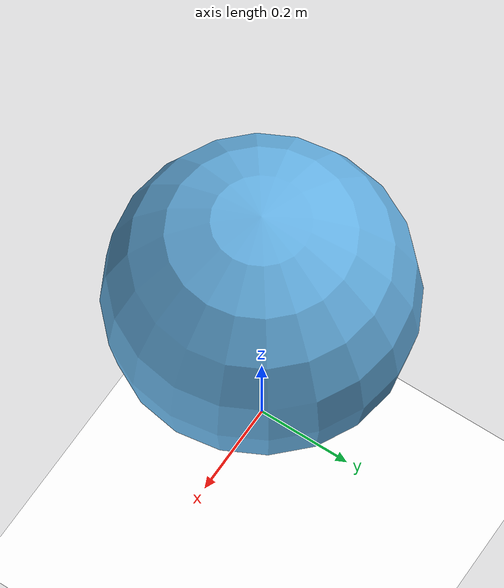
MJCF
<mujoco model="scene9_topology">
  <compiler angle="radian"/>

  <option timestep="0.002" gravity="0 0 -9.81">
    <flag contact="disable"/>
  </option>

  <visual>
    <global offwidth="800" offheight="800"/>
    <quality shadowsize="4096"/>
  </visual>

  <asset>
    <texture name="white_skybox"
             type="skybox"
             builtin="flat"
             width="512"
             height="512"
             rgb1="1 1 1"
             rgb2="1 1 1"/>
    <material name="white_floor" rgba="1 1 1 1" reflectance="0"/>
  </asset>

  <worldbody>
    <light directional="true" pos="0 0 3" dir="0 0 -1" diffuse="0.8 0.8 0.8"/>
    <light directional="true" pos="2 2 3" dir="-0.5 -0.5 -1" diffuse="0.4 0.4 0.4"/>

    <geom name="floor" type="plane" size="5 5 0.1" material="white_floor" pos="0 0 -0.5"/>

    <!-- Target point -->
    <body name="target" pos="0 0 0.5">
      <site name="target_site" size="0.01" rgba="1 0 0 0"/>
    </body>

    <!-- Two droplets -->
    <body name="droplet_1" pos="0 0 0.5">
      <freejoint/>
      <geom name="droplet1_geom" type="sphere" size="0.3" rgba="0.4 0.7 0.9 1" mass="1"/>
    </body>

    <body name="droplet_2" pos="0 0 0.5">
      <freejoint/>
      <geom name="droplet2_geom" type="sphere" size="0.3" rgba="0.4 0.7 0.9 1" mass="1"/>
    </body>

    <!-- Scaled 1.3x for 800x800 square resolution — droplets stay within 0.8m of center -->
    <!-- Ring 1: Cardinal, medium height -->
    <camera name="cam0" pos="2.86 0 1.69" mode="targetbody" target="target" fovy="50"/>
    <camera name="cam1" pos="0 2.86 1.69" mode="targetbody" target="target" fovy="50"/>
    <camera name="cam2" pos="-2.86 0 1.69" mode="targetbody" target="target" fovy="50"/>
    <camera name="cam3" pos="0 -2.86 1.69" mode="targetbody" target="target" fovy="50"/>

    <!-- Ring 2: Diagonal, higher -->
    <camera name="cam4" pos="2.34 2.34 2.86" mode="targetbody" target="target" fovy="50"/>
    <camera name="cam5" pos="-2.34 2.34 2.86" mode="targetbody" target="target" fovy="50"/>
    <camera name="cam6" pos="2.34 -2.34 2.86" mode="targetbody" target="target" fovy="50"/>
    <camera name="cam7" pos="-2.34 -2.34 2.86" mode="targetbody" target="target" fovy="50"/>

    <!-- Ring 3: Close-up, low -->
    <camera name="cam8" pos="1.95 0 0.78" mode="targetbody" target="target" fovy="55"/>
    <camera name="cam9" pos="-1.95 0 0.78" mode="targetbody" target="target" fovy="55"/>

    <!-- Ring 4: Top views -->
    <camera name="cam10" pos="0 0 3.9" mode="targetbody" target="target" fovy="45"/>
    <camera name="cam11" pos="1.3 1.3 3.64" mode="targetbody" target="target" fovy="45"/>
  </worldbody>
</mujoco>
